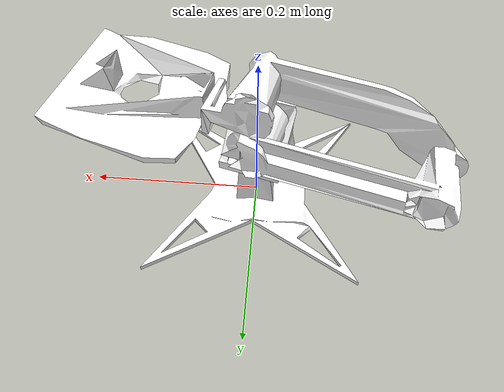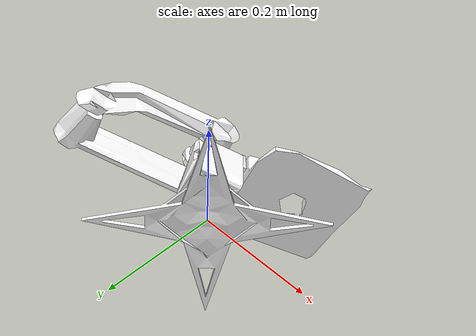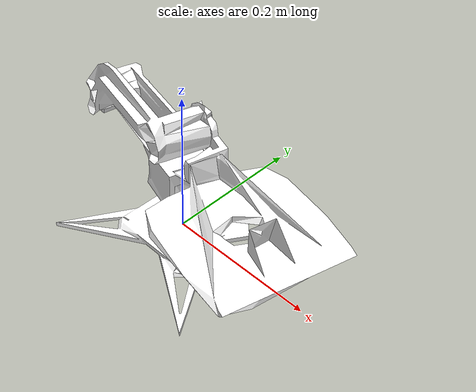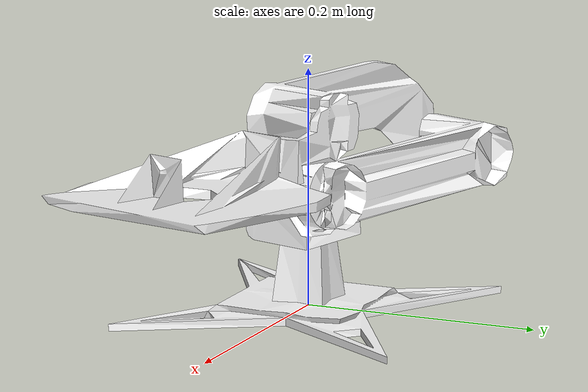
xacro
<?xml version="1.0"?>
<robot xmlns:xacro="http://www.ros.org/wiki/xacro" name="robot_arm">

    <xacro:include filename="robot_arm.urdf" />

    <xacro:arg name="serial_port" default="/dev/arm_motor"/>
    <xacro:arg name="serial_baudrate" default="921600"/>
    <xacro:arg name="timeout_ms" default="10"/>
    <xacro:arg name="retry_count" default="3"/>
    <xacro:arg name="control_mode" default="position_velocity"/>
    <xacro:arg name="base_yaw_motor_id" default="1"/>
    <xacro:arg name="shoulder_pitch_motor_id" default="2"/>
    <xacro:arg name="elbow_pitch_motor_id" default="3"/>
    <xacro:arg name="wrist_pitch_motor_id" default="4"/>

    <link name="world"/>
    <joint name="world_to_base_link" type="fixed">
        <parent link="world"/>
        <child link="base_link"/>
        <origin xyz="0 0 0" rpy="0 0 0"/>
    </joint>

    <ros2_control name="RealSystem" type="system">
        <hardware>
            <plugin>arm_control/ArmSystemHardware</plugin>
            <param name="serial_port">$(arg serial_port)</param>
            <param name="serial_baudrate">$(arg serial_baudrate)</param>
            <param name="serial_open_retry_count">10</param>
            <param name="serial_open_retry_delay_ms">300</param>
            <param name="timeout_ms">$(arg timeout_ms)</param>
            <param name="retry_count">$(arg retry_count)</param>
            <param name="control_mode">$(arg control_mode)</param>
            <param name="usbcan_command">3</param>
            <param name="set_can_bitrate_on_open">false</param>
            <param name="enable_on_activate">true</param>
            <param name="clear_error_on_activate">false</param>
            <param name="save_zero_on_activate">true</param>
            <param name="switch_mode_on_activate">true</param>
            <param name="require_register_ack">true</param>
            <param name="require_motors_on_configure">true</param>
            <param name="require_feedback_on_activate">true</param>
            <param name="home_on_deactivate">true</param>
            <param name="home_on_shutdown">true</param>
            <param name="shutdown_home_duration_s">4.0</param>
            <param name="shutdown_home_command_rate_hz">50.0</param>
            <param name="disable_on_deactivate">true</param>
            <param name="disable_on_shutdown">true</param>
            <param name="disable_command_repeat_count">3</param>
            <param name="disable_command_repeat_delay_ms">20</param>
            <param name="read_feedback_in_read">false</param>
        </hardware>

        <joint name="base_yaw_joint">
            <param name="motor_id">$(arg base_yaw_motor_id)</param>
            <param name="direction">1.0</param>
            <param name="zero_offset">0.0</param>
            <param name="gear_ratio">1.0</param>
            <param name="velocity_limit">1.0</param>
            <command_interface name="position">
                <param name="min">-3.14</param>
                <param name="max">3.14</param>
            </command_interface>
            <state_interface name="position"/>
            <state_interface name="velocity"/>
        </joint>

        <joint name="shoulder_pitch_joint">
            <param name="motor_id">$(arg shoulder_pitch_motor_id)</param>
            <param name="direction">1.0</param>
            <param name="zero_offset">0.0</param>
            <param name="gear_ratio">1.0</param>
            <param name="velocity_limit">1.0</param>
            <command_interface name="position">
                <param name="min">-0.42</param>
                <param name="max">3.58</param>
            </command_interface>
            <state_interface name="position"/>
            <state_interface name="velocity"/>
        </joint>

        <joint name="elbow_pitch_joint">
            <param name="motor_id">$(arg elbow_pitch_motor_id)</param>
            <param name="direction">1.0</param>
            <param name="zero_offset">0.0</param>
            <param name="gear_ratio">1.0</param>
            <param name="velocity_limit">1.0</param>
            <command_interface name="position">
                <param name="min">0.0</param>
                <param name="max">3.14</param>
            </command_interface>
            <state_interface name="position"/>
            <state_interface name="velocity"/>
        </joint>

        <joint name="wrist_pitch_joint">
            <param name="motor_id">$(arg wrist_pitch_motor_id)</param>
            <param name="direction">1.0</param>
            <param name="zero_offset">0.0</param>
            <param name="gear_ratio">1.0</param>
            <param name="velocity_limit">1.0</param>
            <command_interface name="position">
                <param name="min">-3.14</param>
                <param name="max">0.3</param>
            </command_interface>
            <state_interface name="position"/>
            <state_interface name="velocity"/>
        </joint>
    </ros2_control>

</robot>

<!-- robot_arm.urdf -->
<robot name="robot_arm">
  <link name="base_link">
      <visual>
        <origin xyz="0 0 0" rpy="0 0 0" />
        <geometry>
          <mesh filename="package://arm_model/model/base_link.STL" />
        </geometry>
        <material name="default">
          <color rgba="1.00000000 1.00000000 1.00000000 1.00000000"/>
        </material>
      </visual>
      <collision>
        <origin xyz="0 0 0.005" rpy="0 0 0" />
        <geometry>
          <cylinder radius="0.137364" length="0.000001" />
        </geometry>
      </collision>
      <inertial>
        <origin xyz="0 0 0.013347" rpy="0 0 0" />
        <mass value="0.31733" />
        <inertia ixx="0.0002426" ixy="0" ixz="0" iyy="0.0002426" iyz="0" izz="0.0004234" />
      </inertial>
    </link>
  <link name="base_yaw_Link">
      <visual>
        <origin xyz="0 0 0" rpy="0 0 0" />
        <geometry>
          <mesh filename="package://arm_model/model/base_yaw_Link.STL" />
        </geometry>
        <material name="default">
          <color rgba="1.00000000 1.00000000 1.00000000 1.00000000"/>
        </material>
      </visual>
      <collision>
        <origin xyz="-0.0010804 -0.0038333 0.034" rpy="0 0 0" />
        <geometry>
          <cylinder radius="0.010001" length="0.118469" />
        </geometry>
      </collision>
      <inertial>
        <origin xyz="-0.0020917 -0.0074065 0.032382" rpy="0 0 0" />
        <mass value="0.22637" />
        <inertia ixx="0.0001279" ixy="0.0000052" ixz="0.0000048" iyy="0.0001444" iyz="0.000018" izz="0.0001467" />
      </inertial>
    </link>
  <link name="upper_arm_link">
      <visual>
        <origin xyz="0 0 0" rpy="0 0 0" />
        <geometry>
          <mesh filename="package://arm_model/model/upper_arm_link.STL" />
        </geometry>
        <material name="default">
          <color rgba="1.00000000 1.00000000 1.00000000 1.00000000"/>
        </material>
      </visual>
      <collision>
        <origin xyz="-0.1009507 0.0165225 -0.0000248" rpy="-3.1328242 -0.0001984 -0.1367144" />
        <geometry>
          <box size="0.163662 0.024919 0.007327" />
        </geometry>
      </collision>
      <inertial>
        <origin xyz="-0.15294 0.02387 0" rpy="0 0 0" />
        <mass value="0.24808" />
        <inertia ixx="0.000124" ixy="0.0001414" ixz="0" iyy="0.0005979" iyz="0" izz="0.0006166" />
      </inertial>
    </link>
  <link name="forearm_link">
      <visual>
        <origin xyz="0 0 0" rpy="0 0 0" />
        <geometry>
          <mesh filename="package://arm_model/model/forearm_link.STL" />
        </geometry>
        <material name="default">
          <color rgba="1.00000000 1.00000000 1.00000000 1.00000000"/>
        </material>
      </visual>
      <collision>
        <origin xyz="0.0969654 -0.0145236 0.0444222" rpy="3.0486435 -0.2620476 -0.1375345" />
        <geometry>
          <box size="0.15 0.015238 0.012728" />
        </geometry>
      </collision>
      <inertial>
        <origin xyz="0.14778 -0.023186 0.050608" rpy="0 0 0" />
        <mass value="0.2587" />
        <inertia ixx="0.000185" ixy="0.0001548" ixz="-0.0001335" iyy="0.0007044" iyz="0.0000371" izz="0.0006698" />
      </inertial>
    </link>
  <link name="wrist_link">
      <visual>
        <origin xyz="0 0 0" rpy="0 0 0" />
        <geometry>
          <mesh filename="package://arm_model/model/wrist_link.STL" />
        </geometry>
        <material name="default">
          <color rgba="1.00000000 1.00000000 1.00000000 1.00000000"/>
        </material>
      </visual>
      <collision>
        <origin xyz="0.0201568 -0.0209135 -0.0095326" rpy="-1.4993451 0.3553112 -0.8455611" />
        <geometry>
          <box size="0.049957 0.017099 0.015769" />
        </geometry>
      </collision>
      <inertial>
        <origin xyz="0.020287 -0.022165 -0.010354" rpy="0 0 0" />
        <mass value="0.047454" />
        <inertia ixx="0.0000316" ixy="0.000014" ixz="0.0000076" iyy="0.0000313" iyz="-0.0000068" izz="0.0000417" />
      </inertial>
    </link>
  <link name="end_effector_fixed_joint">
      <visual>
        <origin xyz="0 0 0" rpy="0 0 0" />
        <geometry>
          <mesh filename="package://arm_model/model/end_effector_fixed_joint.STL" />
        </geometry>
        <material name="default">
          <color rgba="1.00000000 1.00000000 1.00000000 1.00000000"/>
        </material>
      </visual>
      <collision>
        <origin xyz="-0.0354207 0.0096738 -0.0080076" rpy="0.0064462 0.0665544 -0.271741" />
        <geometry>
          <box size="0.124232 0.070576 0.016323" />
        </geometry>
      </collision>
      <inertial>
        <origin xyz="-0.041409 0.011419 -0.017913" rpy="0 0 0" />
        <mass value="0.32249" />
        <inertia ixx="0.0007915" ixy="0.0000435" ixz="0.0000128" iyy="0.0009371" iyz="-0.0000035" izz="0.0016677" />
      </inertial>
    </link>
  <joint name="base_yaw_joint" type="revolute">
      <parent link="base_link" />
      <child link="base_yaw_Link" />
      <origin xyz="0.000017 -0.0000228 0.058" rpy="0 0 0" />
      <axis xyz="0 0 1" />
      <limit lower="-3.14" upper="3.14" effort="10" velocity="1" />
    </joint>
  <joint name="shoulder_pitch_joint" type="revolute">
      <parent link="base_yaw_Link" />
      <child link="upper_arm_link" />
      <origin xyz="0.0080913 0.029425 0.0395" rpy="0 0 0" />
      <axis xyz="0.26585 0.96402 0" />
      <limit lower="-0.42" upper="3.58" effort="10" velocity="1" />
    </joint>
  <joint name="elbow_pitch_joint" type="revolute">
      <parent link="upper_arm_link" />
      <child link="forearm_link" />
      <origin xyz="-0.21008 -0.0094917 0" rpy="0 0 0" />
      <axis xyz="-0.26585 -0.96402 0" />
      <limit lower="0" upper="3.14" effort="10" velocity="1" />
    </joint>
  <joint name="wrist_pitch_joint" type="revolute">
      <parent link="forearm_link" />
      <child link="wrist_link" />
      <origin xyz="0.21061 0.01142 0.057" rpy="0 0 0" />
      <axis xyz="0.26585 0.96402 0" />
      <limit lower="-3.14" upper="0.3" effort="10" velocity="1" />
    </joint>
  <joint name="end_effector_link" type="fixed">
      <parent link="wrist_link" />
      <child link="end_effector_fixed_joint" />
      <origin xyz="0.16309 -0.080763 -0.016359" rpy="0 0 0" />
    </joint>
</robot>
